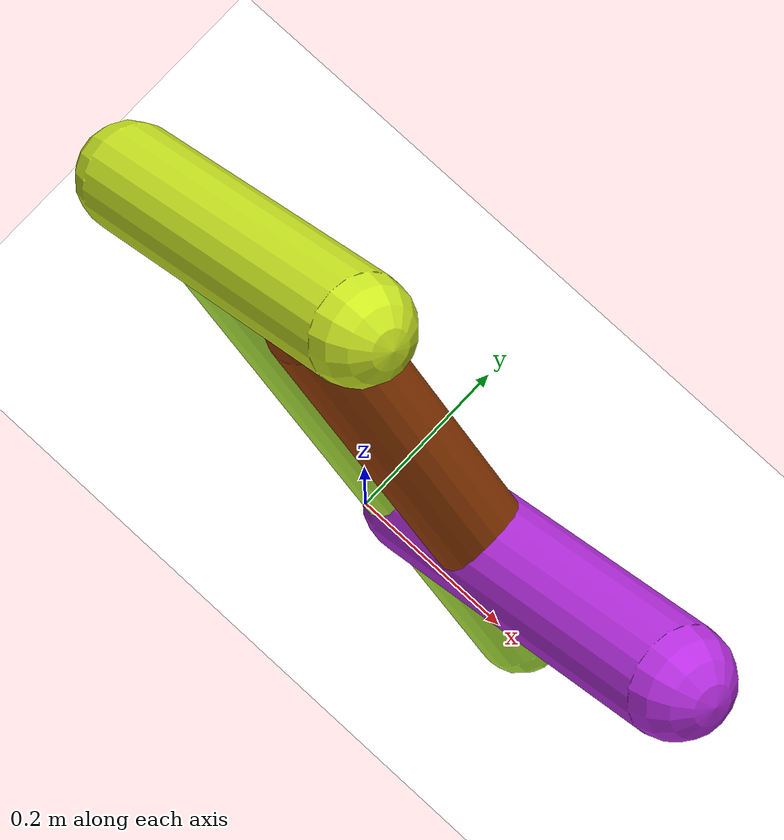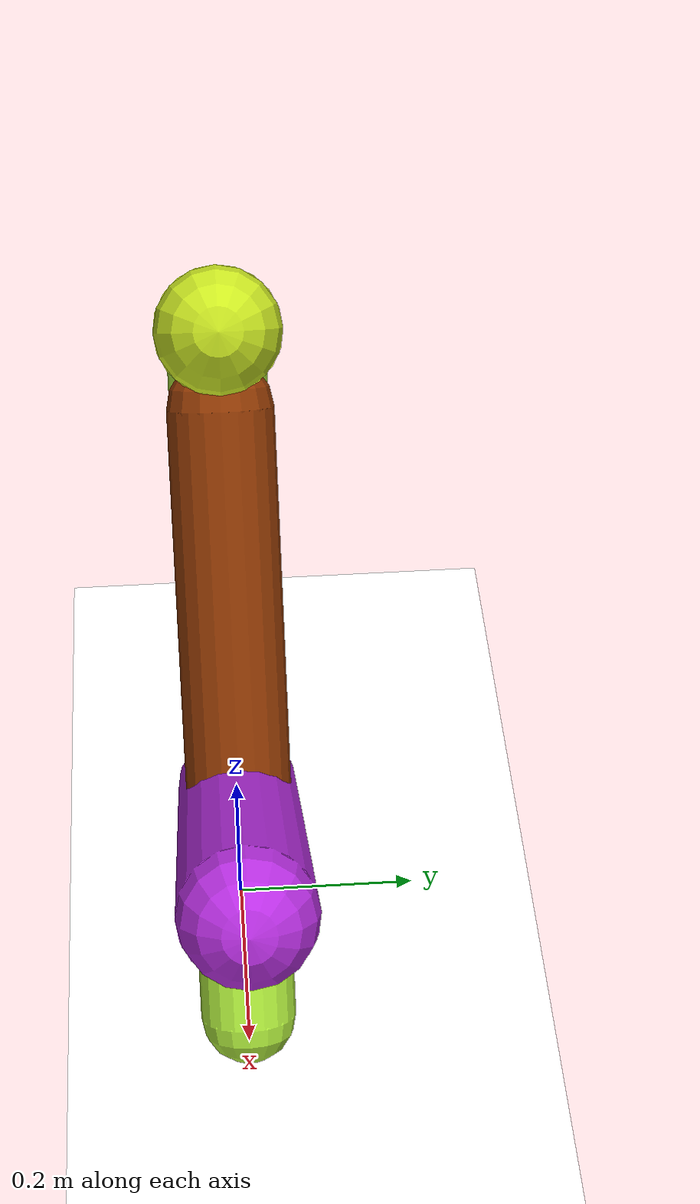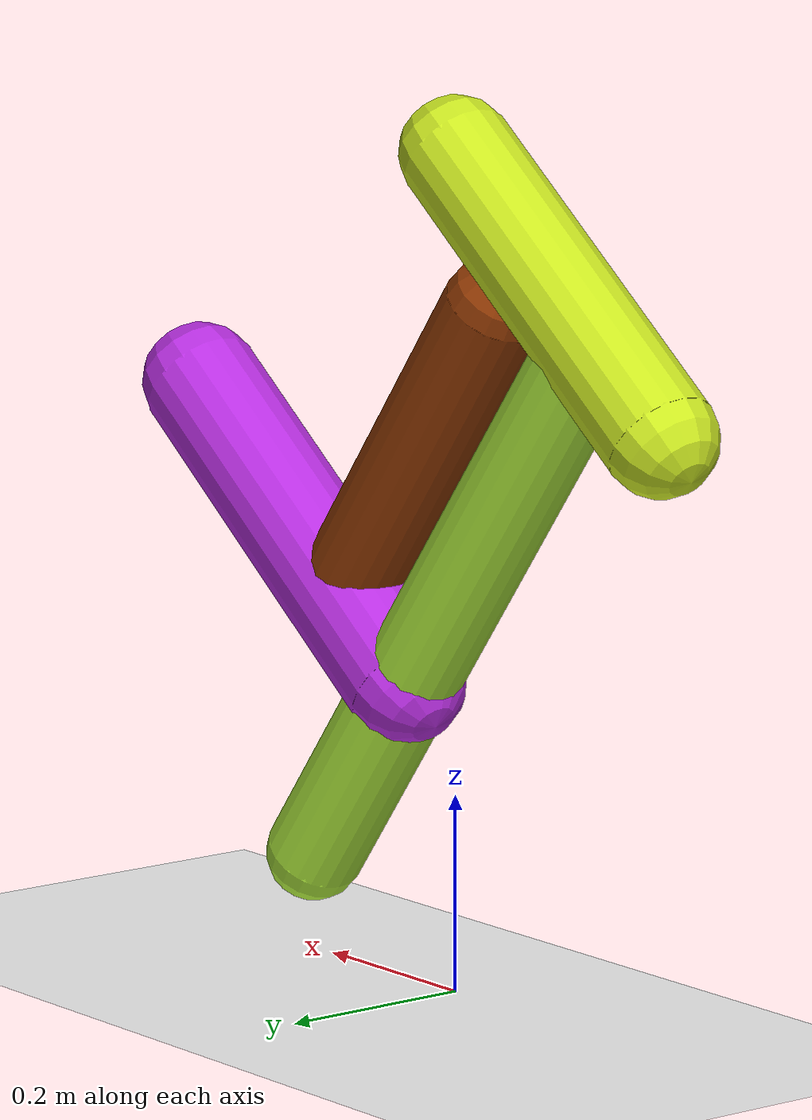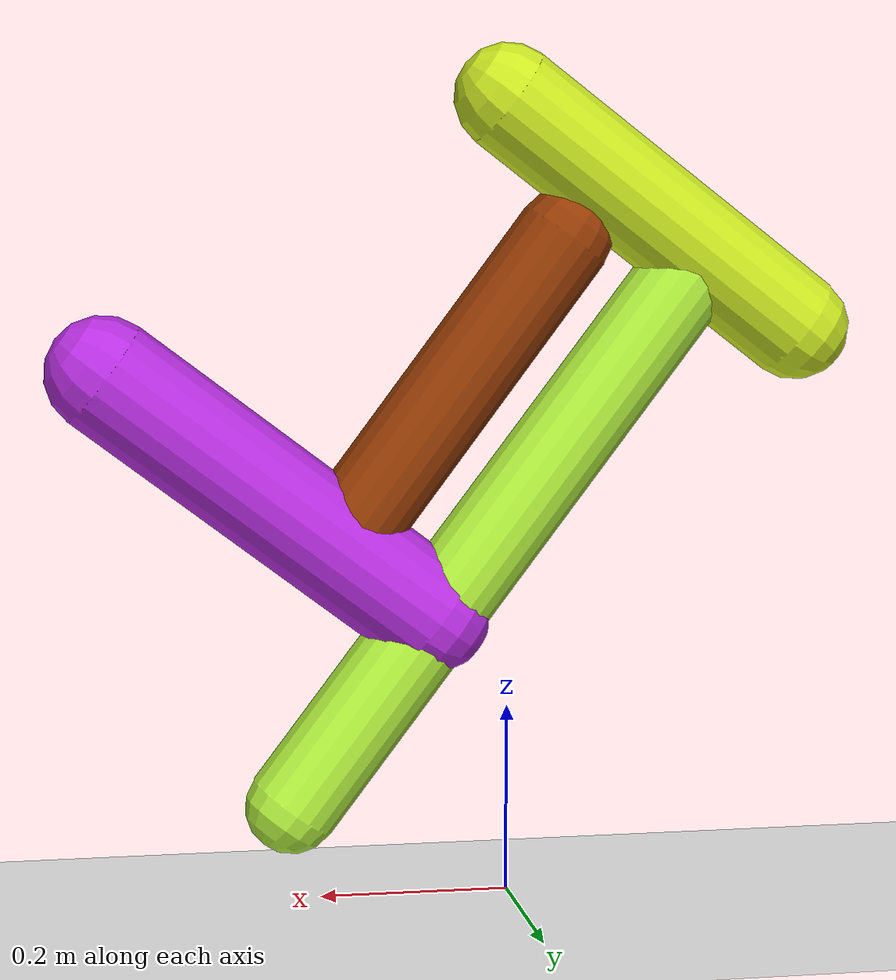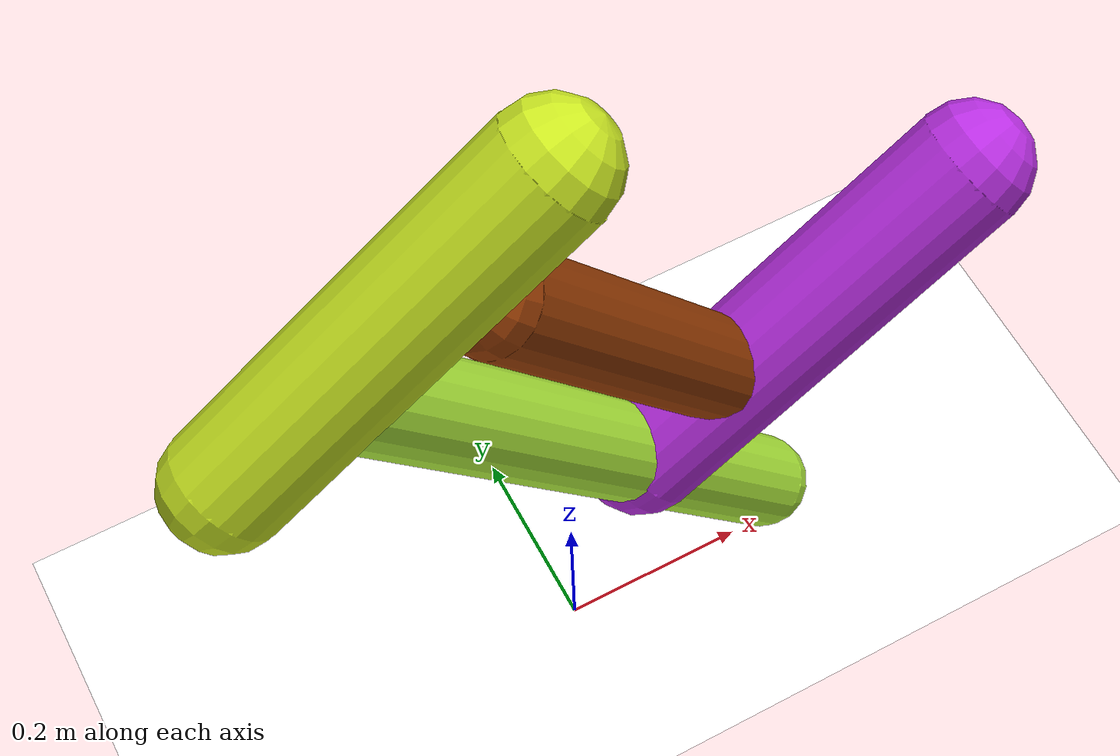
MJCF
<mujoco model="morphology">
  <option timestep="0.01"/>
  <default>
    <default class="/"/>
  </default>
  <asset>
    <texture name="texplane" type="2d" builtin="checker" rgb1="0.1 0.2 0.3" rgb2="0.2 0.3 0.4" width="300" height="300"/>
    <material name="MatPlane" class="/" texture="texplane" texrepeat="20 20" specular="1" shininess="1" reflectance="0.5"/>
  </asset>
  <worldbody>
    <light name="//unnamed_light_0" class="/" directional="true" pos="0 0 1.5" dir="0 0 -1.3" cutoff="1e+02" exponent="1" diffuse="1 1 1" specular="0.1 0.1 0.1"/>
    <geom name="ground" class="/" type="plane" size="15 15 0.5" material="MatPlane" rgba="1 1 1 1"/>
    <body name="body" pos="0 0 0.84">
      <geom name="geom0" class="/" type="capsule" contype="1" conaffinity="1" condim="3" size="0.057" rgba="0.79 0.9 0.13 1" friction="0.4 0.1 0.1" fromto="0 0 0 -0.31 0 -0.24"/>
      <body name="body1" pos="-0.21 0 -0.16">
        <geom name="geom1" class="/" type="capsule" contype="1" conaffinity="1" condim="3" size="0.05" rgba="0.7 0.94 0.24 1" friction="0.4 0.1 0.1" fromto="0 0 0 0.44 0 -0.58"/>
        <body name="body2" pos="0.29 0 -0.38">
          <geom name="geom2" class="/" type="capsule" contype="1" conaffinity="1" condim="3" size="0.061" rgba="0.72 0.18 0.88 1" friction="0.4 0.1 0.1" fromto="0 0 0 0.34 0 0.26"/>
          <body name="body3" pos="0.1 0 0.077">
            <geom name="geom3" class="/" type="capsule" contype="1" conaffinity="1" condim="3" size="0.051" rgba="0.58 0.23 0.016 1" friction="0.4 0.1 0.1" fromto="0 0 0 -0.24 0 0.32"/>
            <joint name="joint3" class="/" type="hinge" axis="0 1 0" limited="true" stiffness="20" range="-49 49" armature="0.1" damping="2"/>
          </body>
          <joint name="joint2" class="/" type="hinge" axis="0 1 0" limited="true" stiffness="20" range="-43 43" armature="0.1" damping="2"/>
        </body>
        <joint name="joint1" class="/" type="hinge" axis="0 1 0" limited="true" stiffness="20" range="-67 67" armature="0.1" damping="2"/>
      </body>
      <joint name="rootx" class="/" type="slide" axis="1 0 0" limited="false" stiffness="0" armature="0" damping="0"/>
      <joint name="rootz" class="/" type="slide" axis="0 0 1" limited="false" stiffness="0" armature="0" damping="0"/>
      <joint name="rooty" class="/" type="hinge" axis="0 1 0" limited="false" stiffness="0" armature="0" damping="0"/>
    </body>
  </worldbody>
  <actuator>
    <motor name="motor3" class="/" ctrllimited="true" ctrlrange="-1 1" gear="1.3e+02" joint="joint3"/>
    <motor name="motor2" class="/" ctrllimited="true" ctrlrange="-1 1" gear="1.9e+02" joint="joint2"/>
    <motor name="motor1" class="/" ctrllimited="true" ctrlrange="-1 1" gear="2e+02" joint="joint1"/>
  </actuator>
  <sensor>
    <subtreelinvel name="velocity" body="body"/>
  </sensor>
</mujoco>
